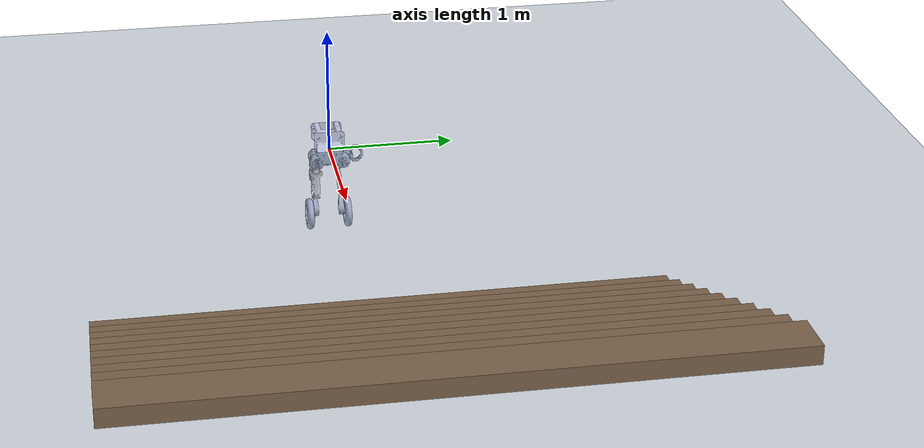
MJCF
<mujoco model="l5aurdf20260420">
  <compiler angle="radian" meshdir="../meshes/"/>
<option timestep="0.005" integrator="RK4">
  </option>
  <default>
    <light castshadow="false" diffuse="1 1 1" />
    <camera fovy="60" />
    <default class="visual">
      <geom contype="0" conaffinity="0" group="1" type="mesh" rgba="0.9 0.9 0.9 1.0" />
    </default>
    <default class="collision">
      <geom contype="1" conaffinity="1" friction="1.0 0.01 0.005" rgba="0.9 0.3 0.4 0" margin="0.001" group="0" />
    </default>
    <joint damping="0.01" armature="0.01" frictionloss="0.5" />
  </default>
  <asset>
    <texture name="gridtex" type="2d" builtin="checker" width="512" height="512" rgb1="0.2 0.3 0.4" rgb2="0.3 0.4 0.5" mark="edge" markrgb="1 1 1"/>
    <material name="grid" texture="gridtex" texrepeat="4 4" reflectance="0.2"/>
    <mesh name="base_link" file="base_link.STL"/>
    <mesh name="left_hip_roll_Link" file="left_hip_roll_Link.STL"/>
    <mesh name="left_hip_pitch_Link" file="left_hip_pitch_Link.STL"/>
    <mesh name="left_knee_Link" file="left_knee_Link.STL"/>
    <mesh name="left_wheel_Link" file="left_wheel_Link.STL"/>
    <mesh name="right_hip_roll_Link" file="right_hip_roll_Link.STL"/>
    <mesh name="right_hip_pitch_Link" file="right_hip_pitch_Link.STL"/>
    <mesh name="right_knee_Link" file="right_knee_Link.STL"/>
    <mesh name="right_wheel_Link" file="right_wheel_Link.STL"/>
  </asset>

  <worldbody>
    <light pos="5 0 30" />
    <geom name="plane" type="plane" size="20 20 .01" material="grid" friction="1.0 0.02 0.01"/>
        <!-- Step 1 -->
    <geom name="step1" type="box"
          size="0.15 2.0 0.06"
          pos="3.0 0.0 0.06"
          rgba="0.5 0.4 0.3 1"/>

    <!-- Step 2 -->
    <geom name="step2" type="box"
          size="0.15 2.0 0.06"
          pos="3.3 0.0 0.18"
          rgba="0.5 0.4 0.3 1"/>

    <!-- Step 3 -->
    <geom name="step3" type="box"
          size="0.15 2.0 0.06"
          pos="3.6 0.0 0.3"
          rgba="0.5 0.4 0.3 1"/>

    <!-- Step 4 -->
    <geom name="step4" type="box"
          size="0.15 2.0 0.06"
          pos="3.9 0.0 0.42"
          rgba="0.5 0.4 0.3 1"/>

    <!-- Step 5 -->
    <geom name="step5" type="box"
          size="0.15 2.0 0.06"
          pos="4.2 0.0 0.54"
          rgba="0.5 0.4 0.3 1"/>

    <!-- Step 6 -->
    <geom name="step6" type="box"
          size="0.15 2.0 0.06"
          pos="4.5 0.0 0.66"
          rgba="0.5 0.4 0.3 1"/>

    <!-- Step 7 -->
    <geom name="step7" type="box"
          size="0.15 2.0 0.06"
          pos="4.8 0.0 0.78"
          rgba="0.5 0.4 0.3 1"/>

    <!-- Step 8 -->
    <geom name="step8" type="box"
          size="0.15 2.0 0.06"
          pos="5.1 0.0 0.9"
          rgba="0.5 0.4 0.3 1"/>

    <!-- Step 9 -->
    <geom name="step9" type="box"
          size="0.15 2.0 0.06"
          pos="5.4 0.0 1.02"
          rgba="0.5 0.4 0.3 1"/>

    <!-- Step 10 -->
    <geom name="step10" type="box"
          size="0.15 2.0 0.06"
          pos="5.7 0.0 1.14"
          rgba="0.5 0.4 0.3 1"/>

    <body name="base_link">
      <inertial pos="-0.064916 0.000571 0.016569" quat="0.960723 -0.0128193 -0.277196 -0.00304752" mass="9.3697" diaginertia="0.136171 0.106208 0.0807908"/>
      <joint name="base_joint" type="free" limited="false" actuatorfrclimited="false"/>
      <geom type="mesh" contype="0" conaffinity="0" group="1" density="0" rgba="0.79216 0.81961 0.93333 1" mesh="base_link"/>
      <geom type="mesh" rgba="0.79216 0.81961 0.93333 1" mesh="base_link"/>
      <site name="imu" quat="1 0 0 0" />
      <body name="left_hip_roll_Link" pos="-0.0345 0.1052 -0.1012">
        <inertial pos="-0.068584 0.052295 -3.5e-05" quat="0.600258 0.600782 0.372482 0.374178" mass="1.0844" diaginertia="0.00220323 0.001834 0.00113977"/>
        <joint name="left_hip_roll_joint" pos="0 0 0" axis="1 0 0" range="-0.384 1.396" actuatorfrcrange="-90 90"/>
        <geom type="mesh" contype="0" conaffinity="0" group="1" density="0" rgba="0.79216 0.81961 0.93333 1" mesh="left_hip_roll_Link"/>
        <geom type="mesh" rgba="0.79216 0.81961 0.93333 1" mesh="left_hip_roll_Link"/>
        <body name="left_hip_pitch_Link" pos="-0.078 0.0335 0">
          <inertial pos="-0.02944 -0.057403 -0.039756" quat="0.945144 0.106278 0.270083 0.149876" mass="2.1691" diaginertia="0.0229586 0.0224979 0.00314451"/>
          <joint name="left_hip_pitch_joint" pos="0 0 0" axis="0 1 0" range="-1.012 1.396" actuatorfrcrange="-90 90"/>
          <geom type="mesh" contype="0" conaffinity="0" group="1" density="0" rgba="0.79216 0.81961 0.93333 1" mesh="left_hip_pitch_Link"/>
          <geom type="mesh" rgba="0.79216 0.81961 0.93333 1" mesh="left_hip_pitch_Link"/>
          <body name="left_knee_Link" pos="-0.1675 -0.0335 -0.2295">
            <inertial pos="0.136676 -0.005962 -0.23497" quat="0.684787 -0.195462 -0.165844 0.682171" mass="1.5439" diaginertia="0.0194843 0.0188104 0.00129331"/>
            <joint name="left_knee_joint" pos="0 0 0" axis="0 1 0" range="-1.309 0.262" actuatorfrcrange="-130 130"/>
            <geom type="mesh" contype="0" conaffinity="0" group="1" density="0" rgba="0.79216 0.81961 0.93333 1" mesh="left_knee_Link"/>
            <geom type="mesh" rgba="0.79216 0.81961 0.93333 1" mesh="left_knee_Link"/>
            <body name="left_wheel_Link" pos="0.1675 0.0135 -0.29012">
              <inertial pos="1e-06 0.033151 0" quat="0.707107 0 0 0.707107" mass="1.6822" diaginertia="0.014281 0.007528 0.007528"/>
              <joint name="left_wheel_joint" pos="0 0 0" axis="0 1 0" range="-1000000 1000000" actuatorfrcrange="-90 90"/>
              <geom type="mesh" contype="0" conaffinity="0" group="1" density="0" rgba="0.79216 0.81961 0.93333 1" mesh="left_wheel_Link"/>
              <geom type="mesh" rgba="0.79216 0.81961 0.93333 1" mesh="left_wheel_Link"/>
            </body>
          </body>
        </body>
      </body>
      <body name="right_hip_roll_Link" pos="-0.0345 -0.1048 -0.1012">
        <inertial pos="-0.068042 -0.051679 3.4e-05" quat="0.369699 0.371379 0.601969 0.602522" mass="1.115" diaginertia="0.00232682 0.00196 0.00118118"/>
        <joint name="right_hip_roll_joint" pos="0 0 0" axis="-1 0 0" range="-0.384 1.396" actuatorfrcrange="-90 90"/>
        <geom type="mesh" contype="0" conaffinity="0" group="1" density="0" rgba="1 1 1 1" mesh="right_hip_roll_Link"/>
        <geom type="mesh" rgba="1 1 1 1" mesh="right_hip_roll_Link"/>
        <body name="right_hip_pitch_Link" pos="-0.078 -0.0335 0">
          <inertial pos="-0.029237 0.057398 -0.039584" quat="0.944694 -0.106886 0.270051 -0.152319" mass="2.1831" diaginertia="0.023013 0.0225577 0.00314737"/>
          <joint name="right_hip_pitch_joint" pos="0 0 0" axis="0 1 0" range="-1.396 1.012" actuatorfrcrange="-90 90"/>
          <geom type="mesh" contype="0" conaffinity="0" group="1" density="0" rgba="0.79216 0.81961 0.93333 1" mesh="right_hip_pitch_Link"/>
          <geom type="mesh" rgba="0.79216 0.81961 0.93333 1" mesh="right_hip_pitch_Link"/>
          <body name="right_knee_Link" pos="-0.1675 0.0335 -0.2295">
            <inertial pos="0.14268 0.007424 -0.24621" quat="0.682349 -0.168317 -0.1942 0.684365" mass="1.2578" diaginertia="0.0149991 0.0145484 0.00110045"/>
            <joint name="right_knee_joint" pos="0 0 0" axis="0 1 0" range="-1.309 0.262" actuatorfrcrange="-130 130"/>
            <geom type="mesh" contype="0" conaffinity="0" group="1" density="0" rgba="0.79216 0.81961 0.93333 1" mesh="right_knee_Link"/>
            <geom type="mesh" rgba="0.79216 0.81961 0.93333 1" mesh="right_knee_Link"/>
            <body name="right_wheel_Link" pos="0.1675 -0.0135 -0.29012">
              <inertial pos="0 -0.033151 1e-06" quat="0.707107 0 0 0.707107" mass="1.6822" diaginertia="0.014281 0.007528 0.007528"/>
              <joint name="right_wheel_joint" pos="0 0 0" axis="0 1 0" range="-1000000 1000000" actuatorfrcrange="-90 90"/>
              <geom type="mesh" contype="0" conaffinity="0" group="1" density="0" rgba="0.79216 0.81961 0.93333 1" mesh="right_wheel_Link"/>
              <geom type="mesh" rgba="0.79216 0.81961 0.93333 1" mesh="right_wheel_Link"/>
            </body>
          </body>
        </body>
      </body>
    </body>
  </worldbody>
 <actuator>
    <motor joint="left_hip_roll_joint" name="left_hip_roll_joint" ctrllimited="true" ctrlrange="-200 200" />
    <motor joint="left_hip_pitch_joint" name="left_hip_pitch_joint" ctrllimited="true" ctrlrange="-200 200" />
    <motor joint="left_knee_joint" name="left_knee_joint" ctrllimited="true" ctrlrange="-200 200" />
    <motor joint="left_wheel_joint" name="left_wheel_joint" ctrllimited="true" ctrlrange="-200 200" />
    <motor joint="right_hip_roll_joint" name="right_hip_roll_joint" ctrllimited="true" ctrlrange="-200 200" />
    <motor joint="right_hip_pitch_joint" name="right_hip_pitch_joint" ctrllimited="true" ctrlrange="-200 200" />
    <motor joint="right_knee_joint" name="right_knee_joint" ctrllimited="true" ctrlrange="-200 200" />
    <motor joint="right_wheel_joint" name="right_wheel_joint" ctrllimited="true" ctrlrange="-200 200" />
  </actuator>

   <sensor>
    <actuatorpos name="left_hip_roll_joint_p" actuator="left_hip_roll_joint" />
    <actuatorvel name="left_hip_roll_joint_v" actuator="left_hip_roll_joint" />
    <actuatorfrc name="left_hip_roll_joint_f" actuator="left_hip_roll_joint" noise="0.001" />
    <actuatorpos name="left_hip_pitch_joint_p" actuator="left_hip_pitch_joint" />
    <actuatorvel name="left_hip_pitch_joint_v" actuator="left_hip_pitch_joint" />
    <actuatorfrc name="left_hip_pitch_joint_f" actuator="left_hip_pitch_joint" noise="0.001" />
    <actuatorpos name="left_knee_joint_p" actuator="left_knee_joint" />
    <actuatorvel name="left_knee_joint_v" actuator="left_knee_joint" />
    <actuatorfrc name="left_knee_joint_f" actuator="left_knee_joint" noise="0.001" />
    <actuatorpos name="left_wheel_joint_p" actuator="left_wheel_joint" />
    <actuatorvel name="left_wheel_joint_v" actuator="left_wheel_joint" />
    <actuatorfrc name="left_wheel_joint_f" actuator="left_wheel_joint" noise="0.001" />
    <actuatorpos name="right_hip_roll_joint_p" actuator="right_hip_roll_joint" />
    <actuatorvel name="right_hip_roll_joint_v" actuator="right_hip_roll_joint" />
    <actuatorfrc name="right_hip_roll_joint_f" actuator="right_hip_roll_joint" noise="0.001" />
    <actuatorpos name="right_hip_pitch_joint_p" actuator="right_hip_pitch_joint" />
    <actuatorvel name="right_hip_pitch_joint_v" actuator="right_hip_pitch_joint" />
    <actuatorfrc name="right_hip_pitch_joint_f" actuator="right_hip_pitch_joint" noise="0.001" />
    <actuatorpos name="right_knee_joint_p" actuator="right_knee_joint" />
    <actuatorvel name="right_knee_joint_v" actuator="right_knee_joint" />
    <actuatorfrc name="right_knee_joint_f" actuator="right_knee_joint" noise="0.001" />
    <actuatorpos name="right_wheel_joint_p" actuator="right_wheel_joint" />
    <actuatorvel name="right_wheel_joint_v" actuator="right_wheel_joint" />
    <actuatorfrc name="right_wheel_joint_f" actuator="right_wheel_joint" noise="0.001" />

    <framequat name='orientation' objtype='site' noise='0.001' objname='imu'/>
    <framepos name='position' objtype='site' noise='0.001' objname='imu'/>
    <gyro name='angular-velocity' site='imu' noise='0.005' cutoff='34.9'/>
    <velocimeter name='linear-velocity' site='imu' noise='0.001' cutoff='30'/>
    <accelerometer name='linear-acceleration' site='imu' noise='0.005' cutoff='157'/>
    <magnetometer name='magnetometer' site='imu'/>
  </sensor>

  <contact>
    <exclude body1="base_link" body2="left_hip_roll_Link" />
    <exclude body1="base_link" body2="left_hip_pitch_Link" />
    <exclude body1="base_link" body2="right_hip_roll_Link" />
    <exclude body1="base_link" body2="right_hip_pitch_Link" />
  </contact>

    <keyframe>
    <!--两轮平衡和步态-->
    <key time="0" qpos="0 0 0.645 1 0 0 0
    0.0523599 0.261799 -0.51091 0
    0.0523599 0.261799 -0.51091 0" />
  </keyframe>

</mujoco>
